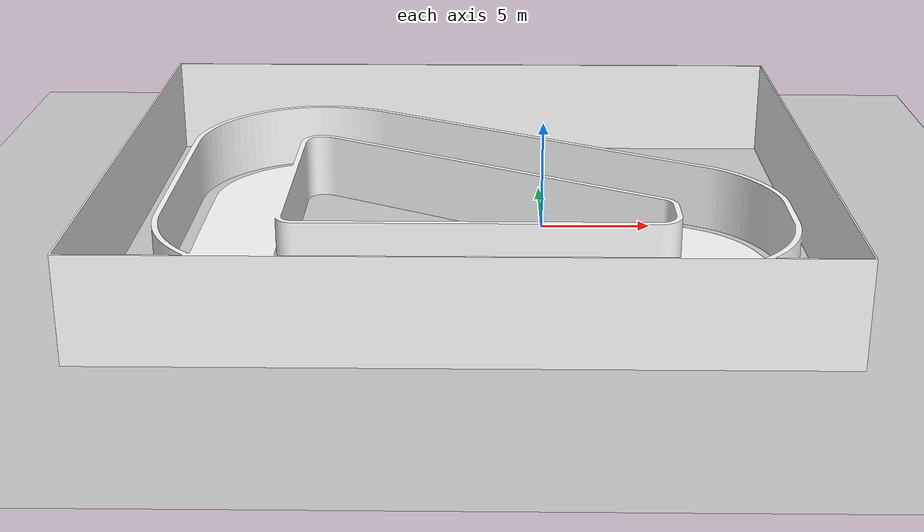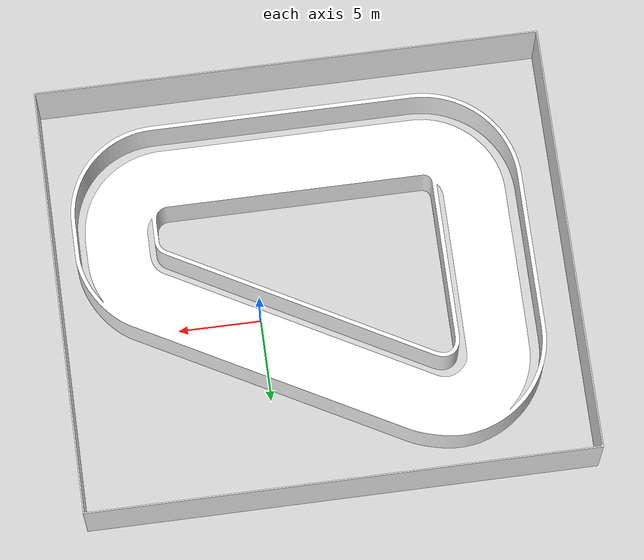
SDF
<sdf version="1.10">
 <world name="mecanum_drive">
  <physics name="1ms" type="ode">
   <max_step_size>0.001</max_step_size>
   <real_time_factor>1</real_time_factor>
   <real_time_update_rate>1000</real_time_update_rate>
  </physics>
  <plugin name="gz::sim::systems::Physics" filename="gz-sim-physics-system"/>
  <plugin name="gz::sim::systems::UserCommands" filename="gz-sim-user-commands-system"/>
  <plugin name="gz::sim::systems::SceneBroadcaster" filename="gz-sim-scene-broadcaster-system"/>
  <gravity>0 0 -9.8000000000000007</gravity>
  <magnetic_field>5.5644999999999998e-06 2.2875799999999999e-05 -4.2388400000000002e-05</magnetic_field>
  <atmosphere type="adiabatic"/>
  <scene>
   <ambient>0.400000006 0.400000006 0.400000006 1</ambient>
   <background>0.699999988 0.699999988 0.699999988 1</background>
   <shadows>true</shadows>
  </scene>
  <model name="ground_plane">
   <static>true</static>
   <link name="link">
    <collision name="collision">
     <geometry><plane><normal>0 0 1</normal><size>100 100</size></plane></geometry>
     <surface><friction><ode><mu>50</mu></ode></friction></surface>
    </collision>
    <visual name="visual">
     <geometry><plane><normal>0 0 1</normal><size>100 100</size></plane></geometry>
     <material>
      <ambient>0.800000012 0.800000012 0.800000012 1</ambient>
      <diffuse>0.800000012 0.800000012 0.800000012 1</diffuse>
      <specular>0.800000012 0.800000012 0.800000012 1</specular>
     </material>
    </visual>
    <inertial>
     <mass>1</mass>
     <inertia><ixx>1</ixx><ixy>0</ixy><ixz>0</ixz><iyy>1</iyy><iyz>0</iyz><izz>1</izz></inertia>
    </inertial>
   </link>
  </model>
  <light name="sun" type="directional">
   <pose>0 0 10 0 0 0</pose>
   <intensity>1</intensity>
   <direction>-0.5 0.10000000000000001 -0.90000000000000002</direction>
   <diffuse>1 1 1 1</diffuse>
   <specular>0.5 0.5 0.5 1</specular>
   <attenuation>
    <range>1000</range>
    <linear>0.01</linear>
    <constant>0.90000000000000002</constant>
    <quadratic>0.001</quadratic>
   </attenuation>
   <spot><inner_angle>0</inner_angle><outer_angle>0</outer_angle><falloff>0</falloff></spot>
  </light>
  <include>
   <uri>model://models/worlds/Trapezoid_barriers_model.sdf</uri>
   <pose>-10 -10 0.01 0 0 0</pose>
   <name>racetrack_barriers</name>
  </include>
 </world>
</sdf>

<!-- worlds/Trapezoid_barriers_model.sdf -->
<sdf version="1.8">
  <model name="test">
    <static>true</static>
    <link name="testlink">
      <visual name="wall">
        <geometry>
          <mesh>
            <uri>../meshes/Trapezoid_barrier/model.dae</uri>
            <submesh>
              <name>wall</name>
            </submesh>
          </mesh>
        </geometry>
        <material>
          <diffuse>1.0 1.0 1.0 1.0</diffuse>
          <specular>0.0 0.0 0.0 1.0</specular>
          <pbr>
            <metal>
              <albedo_map>../meshes/Trapezoid_barrier/walls.jpg</albedo_map>
            </metal>
          </pbr>
        </material>
      </visual>
      <visual name="field">
        <geometry>
          <mesh>
            <uri>../meshes/Trapezoid_barrier/model.dae</uri>
            <submesh>
              <name>field</name>
            </submesh>
          </mesh>
        </geometry>
        <material>
          <diffuse>1.0 1.0 1.0 1.0</diffuse>
          <specular>0.0 0.0 0.0 1.0</specular>
          <pbr>
            <metal>
              <albedo_map>../meshes/Trapezoid_barrier/field.png</albedo_map>
            </metal>
          </pbr>
        </material>
      </visual>
      <visual name="outer_walls">
        <geometry>
          <mesh>
            <uri>../meshes/Trapezoid_barrier/model.dae</uri>
            <submesh>
              <name>outer_walls</name>
            </submesh>
          </mesh>
        </geometry>
        <material>
          <diffuse>1.0 1.0 1.0 1.0</diffuse>
          <specular>0.0 0.0 0.0 1.0</specular>
          <pbr>
            <metal/>
          </pbr>
        </material>
      </visual>
      <visual name="inner_walls">
        <geometry>
          <mesh>
            <uri>../meshes/Trapezoid_barrier/model.dae</uri>
            <submesh>
              <name>inner_walls</name>
            </submesh>
          </mesh>
        </geometry>
        <material>
          <diffuse>1.0 1.0 1.0 1.0</diffuse>
          <specular>0.0 0.0 0.0 1.0</specular>
          <pbr>
            <metal/>
          </pbr>
        </material>
      </visual>
      <visual name="road">
        <geometry>
          <mesh>
            <uri>../meshes/Trapezoid_barrier/model.dae</uri>
            <submesh>
              <name>road</name>
            </submesh>
          </mesh>
        </geometry>
        <material>
          <diffuse>1.0 1.0 1.0 1.0</diffuse>
          <specular>0.0 0.0 0.0 1.0</specular>
          <pbr>
            <metal>
              <albedo_map>../meshes/Trapezoid_barrier/road.png</albedo_map>
            </metal>
          </pbr>
        </material>
      </visual>
      <visual name="il">
        <geometry>
          <mesh>
            <uri>../meshes/Trapezoid_barrier/model.dae</uri>
            <submesh>
              <name>il</name>
            </submesh>
          </mesh>
        </geometry>
        <material>
          <diffuse>1.0 1.0 1.0 1.0</diffuse>
          <specular>0.0 0.0 0.0 1.0</specular>
          <pbr>
            <metal>
              <albedo_map>../meshes/Trapezoid_barrier/outerLine.png</albedo_map>
            </metal>
          </pbr>
        </material>
      </visual>
      <visual name="ol">
        <geometry>
          <mesh>
            <uri>../meshes/Trapezoid_barrier/model.dae</uri>
            <submesh>
              <name>ol</name>
            </submesh>
          </mesh>
        </geometry>
        <material>
          <diffuse>1.0 1.0 1.0 1.0</diffuse>
          <specular>0.0 0.0 0.0 1.0</specular>
          <pbr>
            <metal>
              <albedo_map>../meshes/Trapezoid_barrier/outerLine.png</albedo_map>
            </metal>
          </pbr>
        </material>
      </visual>
      <visual name="cl">
        <geometry>
          <mesh>
            <uri>../meshes/Trapezoid_barrier/model.dae</uri>
            <submesh>
              <name>cl</name>
            </submesh>
          </mesh>
        </geometry>
        <material>
          <diffuse>1.0 1.0 1.0 1.0</diffuse>
          <specular>0.0 0.0 0.0 1.0</specular>
          <pbr>
            <metal>
              <albedo_map>../meshes/Trapezoid_barrier/centerLine.png</albedo_map>
            </metal>
          </pbr>
        </material>
      </visual>
      <visual name="start_line">
        <geometry>
          <mesh>
            <uri>../meshes/Trapezoid_barrier/model.dae</uri>
            <submesh>
              <name>start_line</name>
            </submesh>
          </mesh>
        </geometry>
        <material>
          <diffuse>1.0 1.0 1.0 1.0</diffuse>
          <specular>0.0 0.0 0.0 1.0</specular>
          <pbr>
            <metal>
              <albedo_map>../meshes/Trapezoid_barrier/startline.png</albedo_map>
            </metal>
          </pbr>
        </material>
      </visual>
      <light name="Lamp" type="point">
        <diffuse>1.0 1.0 1.0 1.0</diffuse>
        <attenuation>
          <range>30.00200080871582</range>
          <linear>0.0</linear>
          <quadratic>1.0</quadratic>
          <constant>0.0</constant>
        </attenuation>
        <cast_shadows>true</cast_shadows>
        <intensity>1.0</intensity>
      </light>
      <collision name="collision">
        <geometry>
          <mesh>
            <uri>../meshes/Trapezoid_barrier/model.dae</uri>
          </mesh>
        </geometry>
        <surface>
          <contact>
            <collide_bitmask>0x01</collide_bitmask>
          </contact>
        </surface>
      </collision>
    </link>
  </model>
</sdf>
